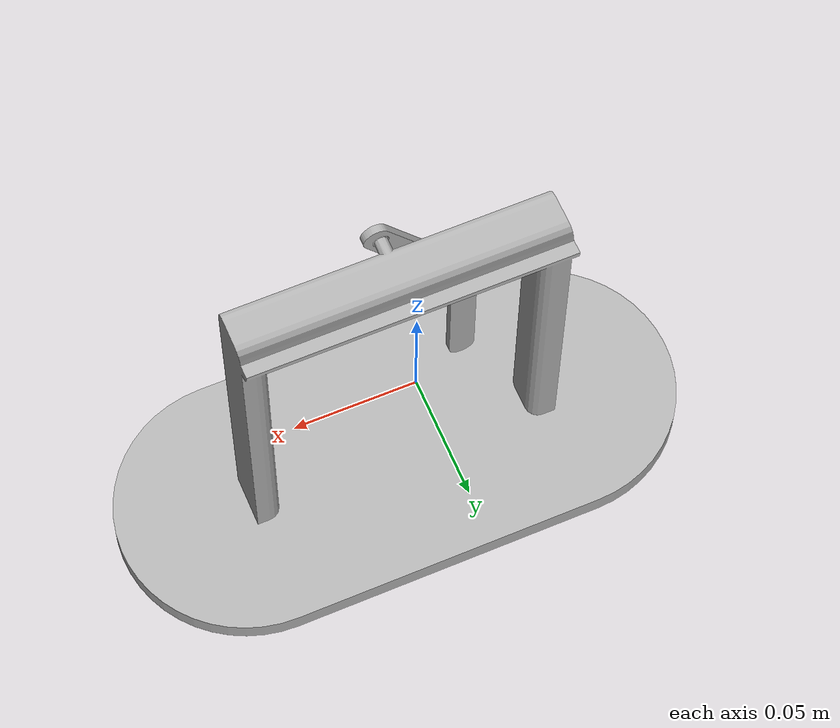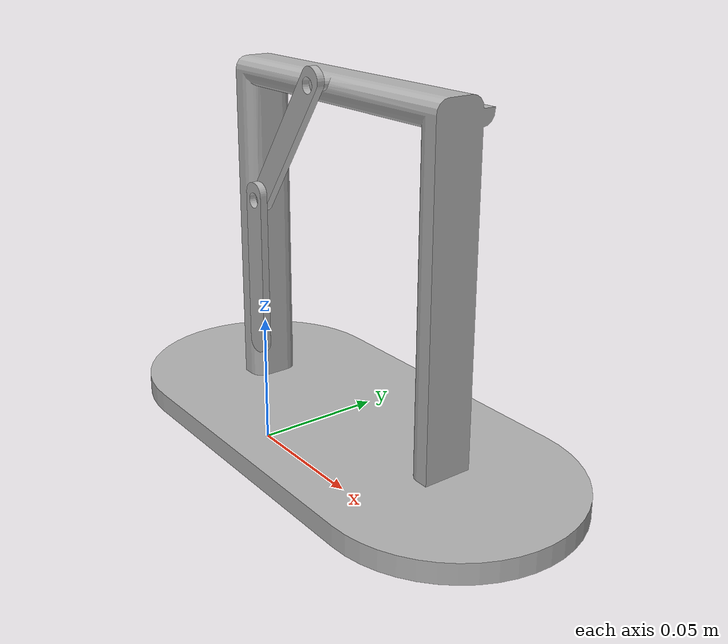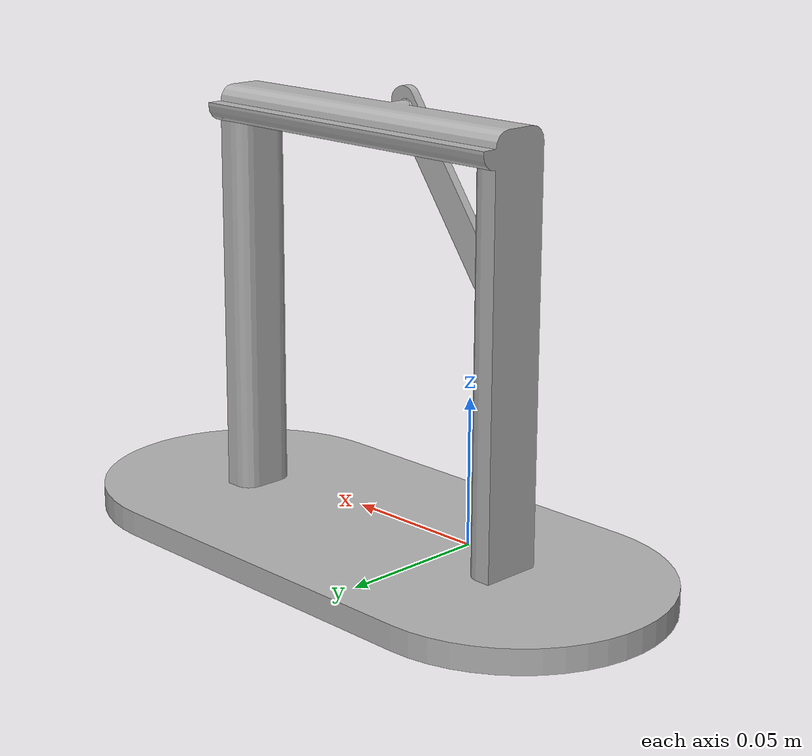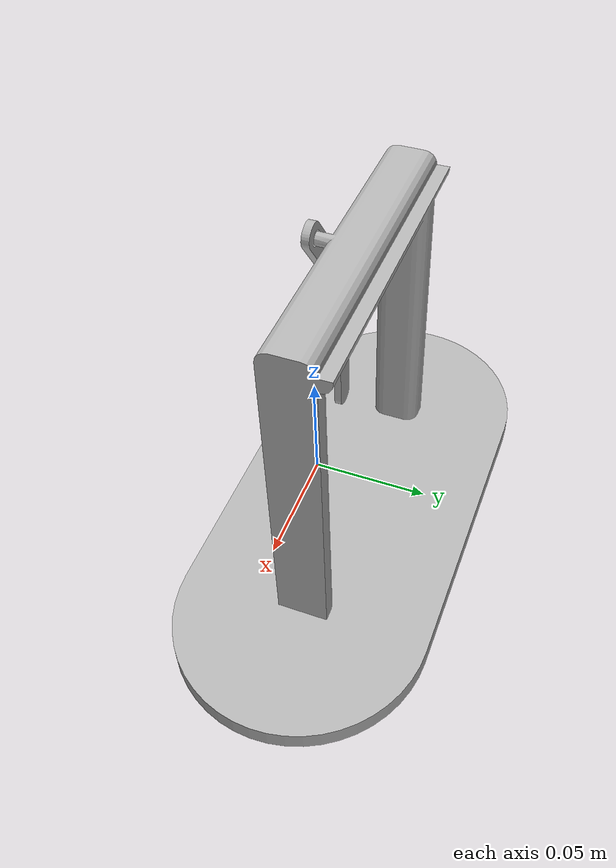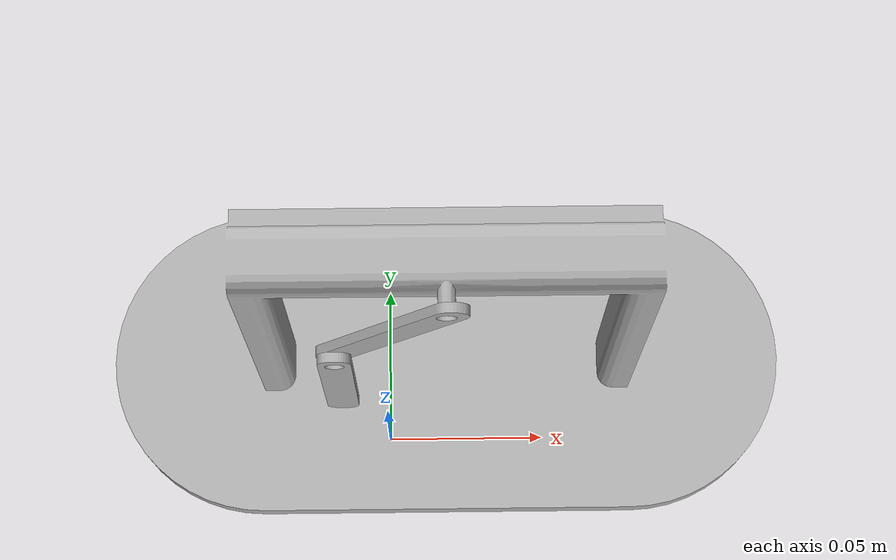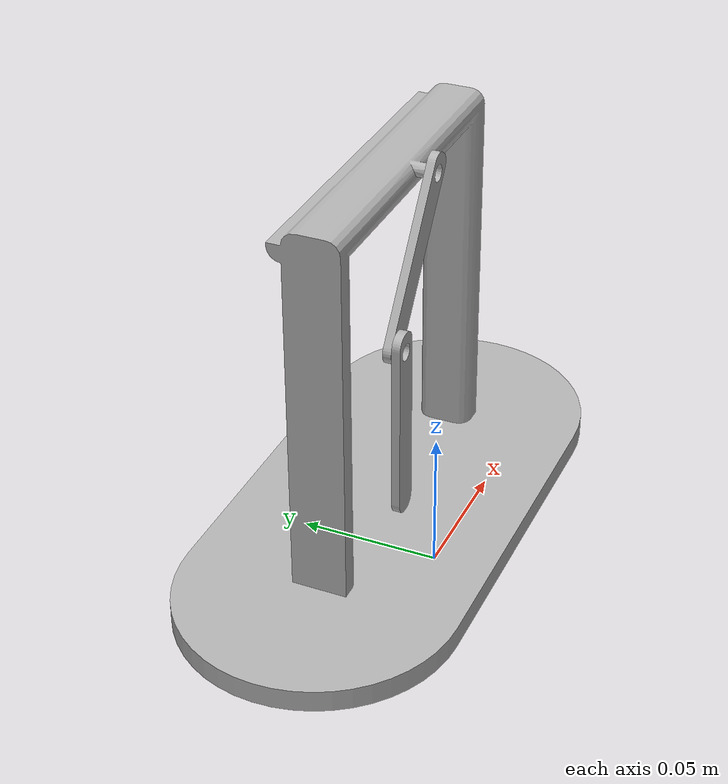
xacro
<?xml version="1.0" ?>
<robot xmlns:xacro="http://www.ros.org/wiki/xacro" name="inverted_pendulum">

    <xacro:include filename="$(find inverted_pendulum_description)/urdf/materials.xacro"/>
    <xacro:include filename="$(find inverted_pendulum_description)/urdf/inverted_pendulum.trans"/>
    <xacro:include filename="$(find inverted_pendulum_description)/urdf/inverted_pendulum.gazebo"/>
    <link name="base_link">
        <inertial>
            <origin xyz="0.0 0.05 0.0" rpy="0 0 0"/>
            <mass value="1.8368"/>
            <inertia ixx="0.005357" iyy="0.010044" izz="0.006605" ixy="0.0" iyz="0" ixz="0.0"/>
        </inertial>
        <visual>
            <origin xyz="0 0 0" rpy="0 0 0"/>
            <geometry>
                <mesh filename="package://inverted_pendulum_description/meshes/base_link.stl"
                      scale="0.001 0.001 0.001"/>
            </geometry>
            <material name="silver"/>
        </visual>
        <collision>
            <origin xyz="0 0 0" rpy="0 0 0"/>
            <geometry>
                <mesh filename="package://inverted_pendulum_description/meshes/base_link.stl"
                      scale="0.001 0.001 0.001"/>
            </geometry>
        </collision>
    </link>

    <link name="leg_1_1">
        <inertial>
            <origin xyz="-0.01675 -0.0015 -0.02393" rpy="0 0 0"/>
            <mass value="0.00208"/>
            <inertia ixx="1e-06" iyy="1e-06" izz="2.13e-07" ixy="0.0" iyz="0.0" ixz="0.0"/>
        </inertial>
        <visual>
            <origin xyz="-0.018516 -0.0111 -0.141337" rpy="0 0 0"/>
            <geometry>
                <mesh filename="package://inverted_pendulum_description/meshes/leg_1_1.stl" scale="0.001 0.001 0.001"/>
            </geometry>
            <material name="silver"/>
        </visual>
        <collision>
            <origin xyz="-0.018516 -0.0111 -0.141337" rpy="0 0 0"/>
            <geometry>
                <mesh filename="package://inverted_pendulum_description/meshes/leg_1_1.stl" scale="0.001 0.001 0.001"/>
            </geometry>
        </collision>
    </link>

    <link name="leg_2_1">
        <inertial>
            <origin xyz="0 -0.0015 -0.029" rpy="0 0 0"/>
            <mass value="0.00208"/>
            <inertia ixx="1e-06" iyy="1e-06" izz="1.92e-07" ixy="0.0" iyz="0.0" ixz="0.0"/>
        </inertial>
        <visual>
            <origin xyz="0.0146 -0.0081 -0.093" rpy="0 0 0"/>
            <geometry>
                <mesh filename="package://inverted_pendulum_description/meshes/leg_2_1.stl" scale="0.001 0.001 0.001"/>
            </geometry>
            <material name="silver"/>
        </visual>
        <collision>
            <origin xyz="0.0146 -0.0081 -0.093" rpy="0 0 0"/>
            <geometry>
                <mesh filename="package://inverted_pendulum_description/meshes/leg_2_1.stl" scale="0.001 0.001 0.001"/>
            </geometry>
        </collision>
    </link>

    <joint name="joint_1" type="revolute">
        <origin xyz="0.0185 0.0111 0.1413" rpy="0 0 0"/>
        <parent link="base_link"/>
        <child link="leg_1_1"/>
        <axis xyz="0.0 1.0 0.0"/>
        <limit effort="0.1" velocity="1" lower="-1e10" upper="1e10"/>
        <dynamics damping="0" friction="0.0002"/>
    </joint>

    <joint name="joint_2" type="revolute">
        <origin xyz="-0.033 -0.003 -0.0482" rpy="0 0 0"/>
        <parent link="leg_1_1"/>
        <child link="leg_2_1"/>
        <axis xyz="0.0 1.0 0.0"/>
        <limit effort="0.1" velocity="1" lower="-1e10" upper="1e10"/>
        <dynamics damping="0" friction="0.0001"/>
    </joint>

</robot>

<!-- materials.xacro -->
<robot name="inverted_pendulum" xmlns:xacro="http://www.ros.org/wiki/xacro" >

<material name="silver">
  <color rgba="0.700 0.700 0.700 1.000"/>
</material>

</robot>

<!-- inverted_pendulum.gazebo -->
<robot name="inverted_pendulum" xmlns:xacro="http://www.ros.org/wiki/xacro" >

<xacro:property name="body_color" value="Gazebo/Silver" />

<gazebo>
  <plugin name="control" filename="libgazebo_ros_control.so"/>
</gazebo>
<gazebo reference="base_link">
  <material>${body_color}</material>
  <mu1>0.9</mu1>
  <mu2>0.9</mu2>
  <selfCollide>true</selfCollide>
  <gravity>true</gravity>
</gazebo>

<gazebo reference="leg_1_1">
  <material>${body_color}</material>
  <mu1>0.</mu1>
  <mu2>0.</mu2>
  <selfCollide>true</selfCollide>
</gazebo>

<gazebo reference="leg_2_1">
  <material>${body_color}</material>
  <mu1>0.</mu1>
  <mu2>0.</mu2>
  <selfCollide>true</selfCollide>
</gazebo>

</robot>
